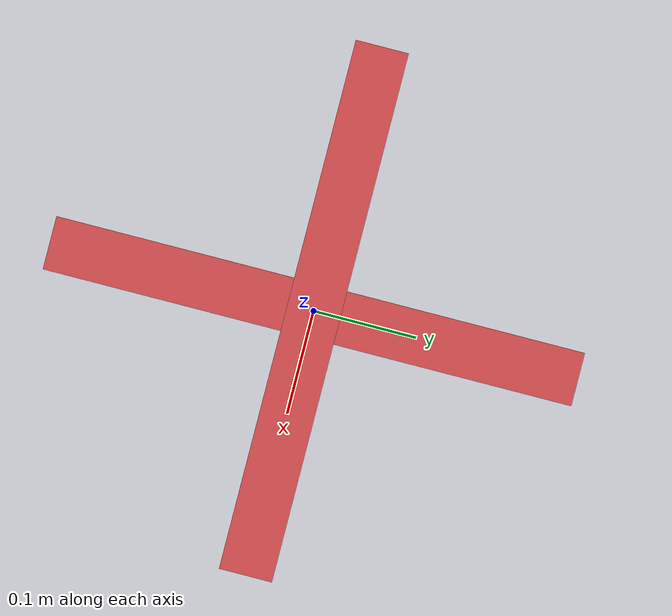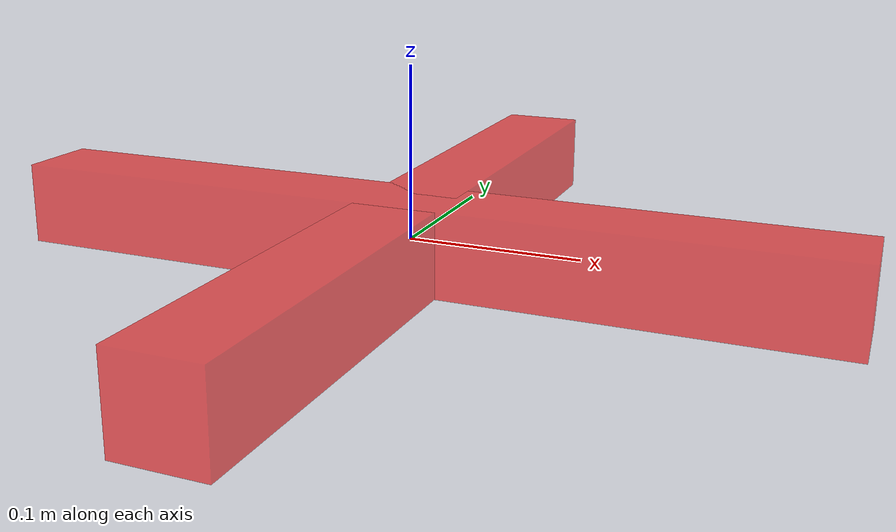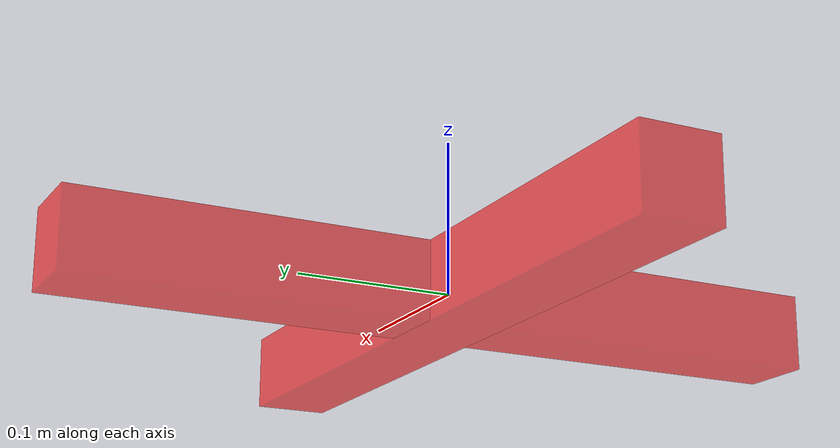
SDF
<?xml version="1.0" ?>
<sdf version="1.6">
  <model name="goal_marker">
    <static>true</static>
    <link name="link">

      <!-- First bar of the cross -->
      <visual name="cross_bar_1">
        <pose>0 0 0 0 0 0</pose>
        <geometry>
          <box>
            <size>0.5 0.05 0.05</size>
          </box>
        </geometry>
        <material>
          <ambient>1 0 0 0.6</ambient>
          <diffuse>1 0 0 0.6</diffuse>
        </material>
        <transparency>0.4</transparency>
      </visual>

      <!-- Second bar of the cross -->
      <visual name="cross_bar_2">
        <pose>0 0 0 0 0 1.5708</pose> <!-- 90° rotation around Z -->
        <geometry>
          <box>
            <size>0.5 0.05 0.05</size>
          </box>
        </geometry>
        <material>
          <ambient>1 0 0 0.6</ambient>
          <diffuse>1 0 0 0.6</diffuse>
        </material>
        <transparency>0.4</transparency>
      </visual>

    </link>
  </model>
</sdf>
